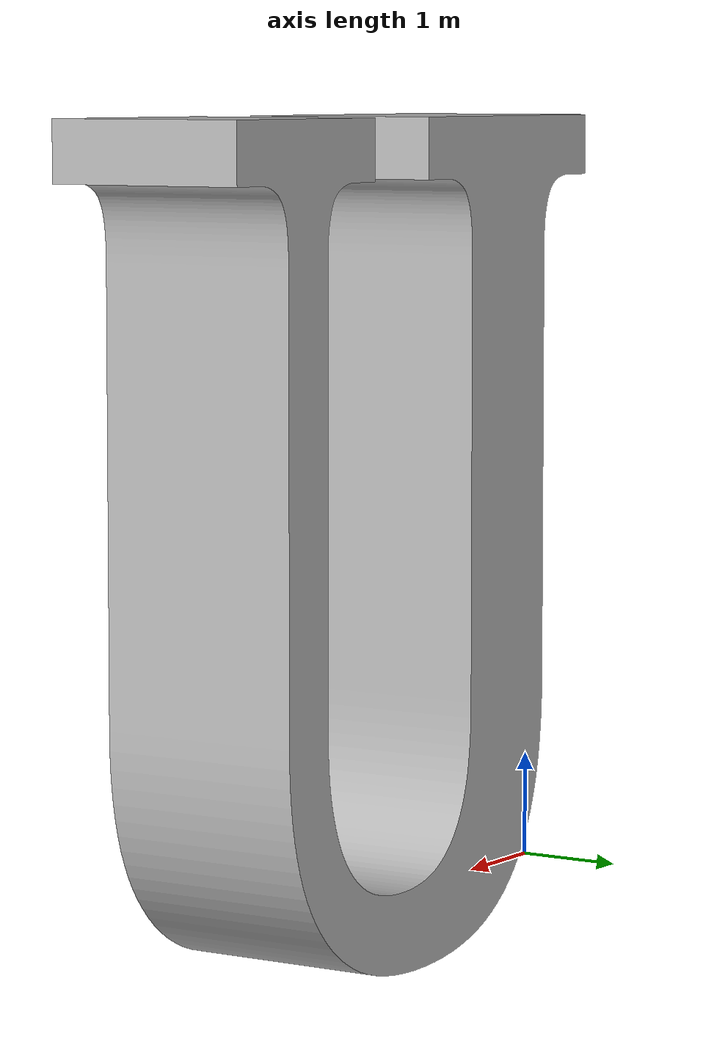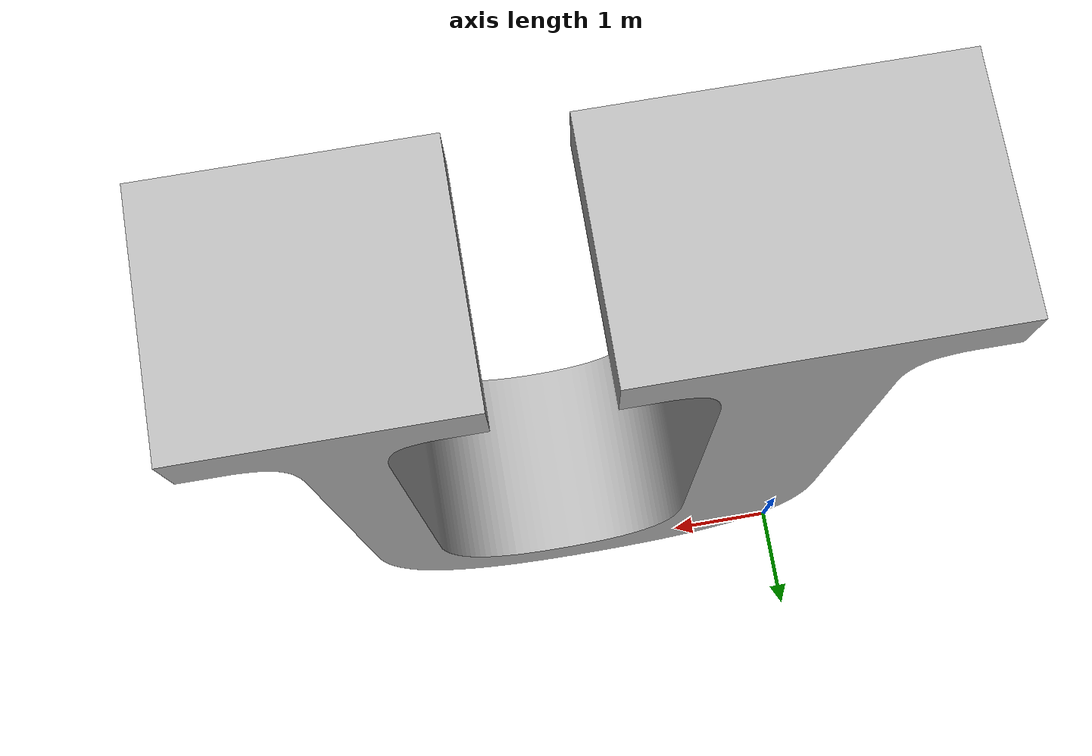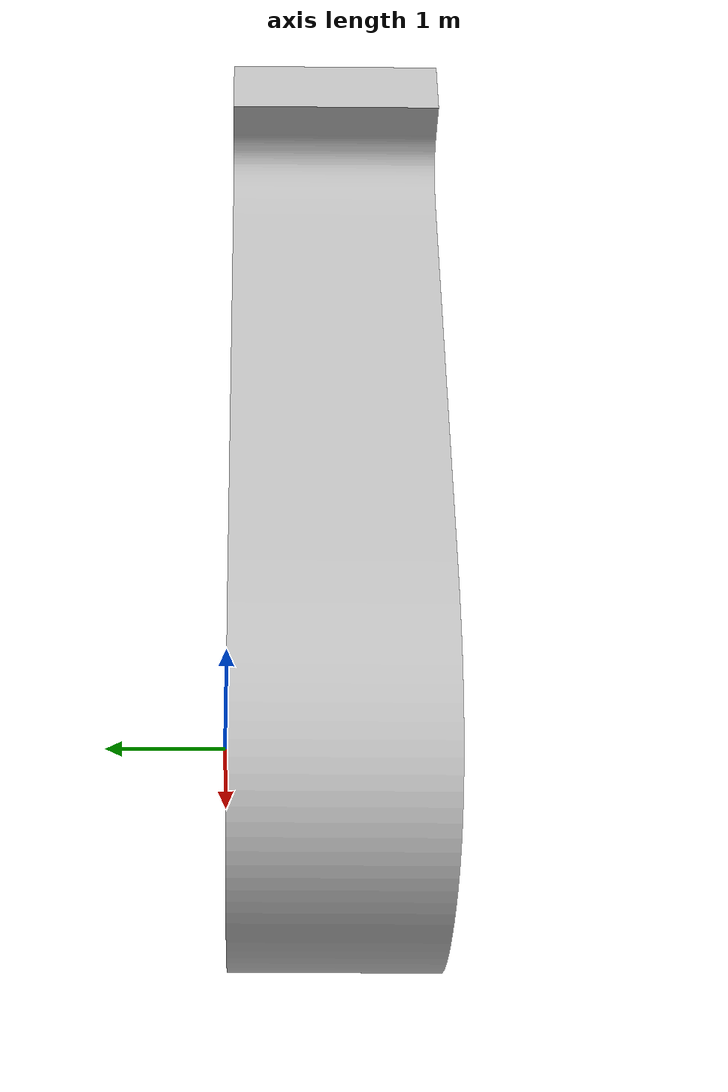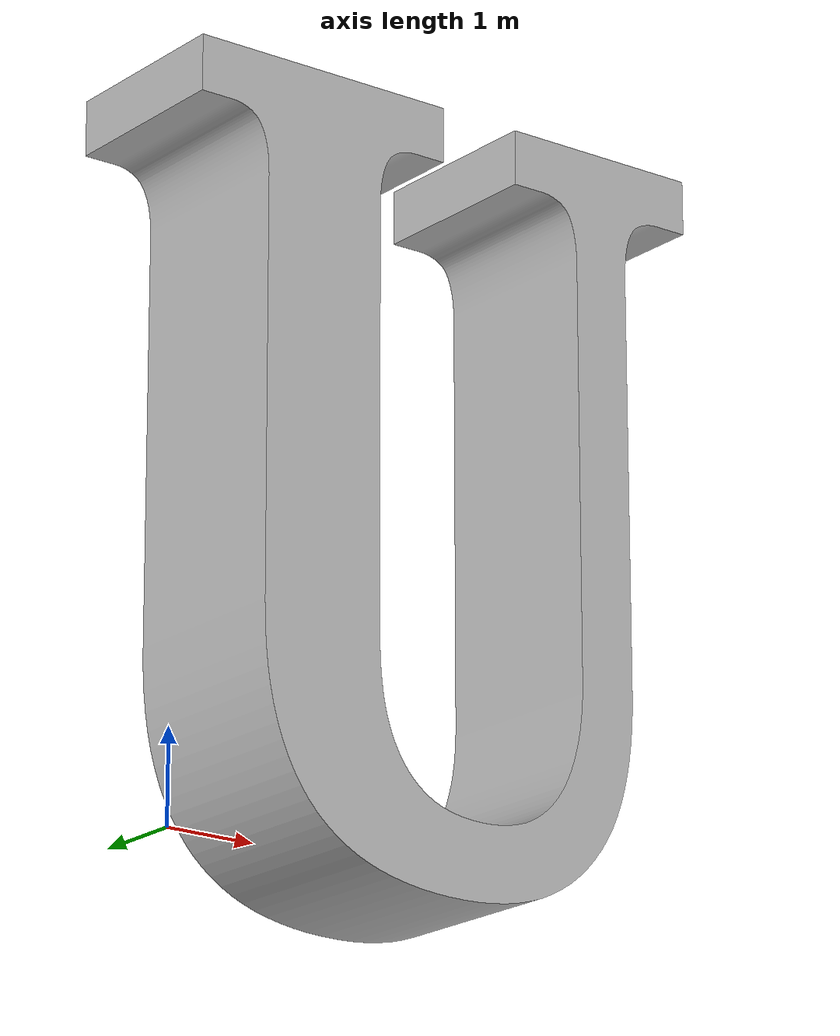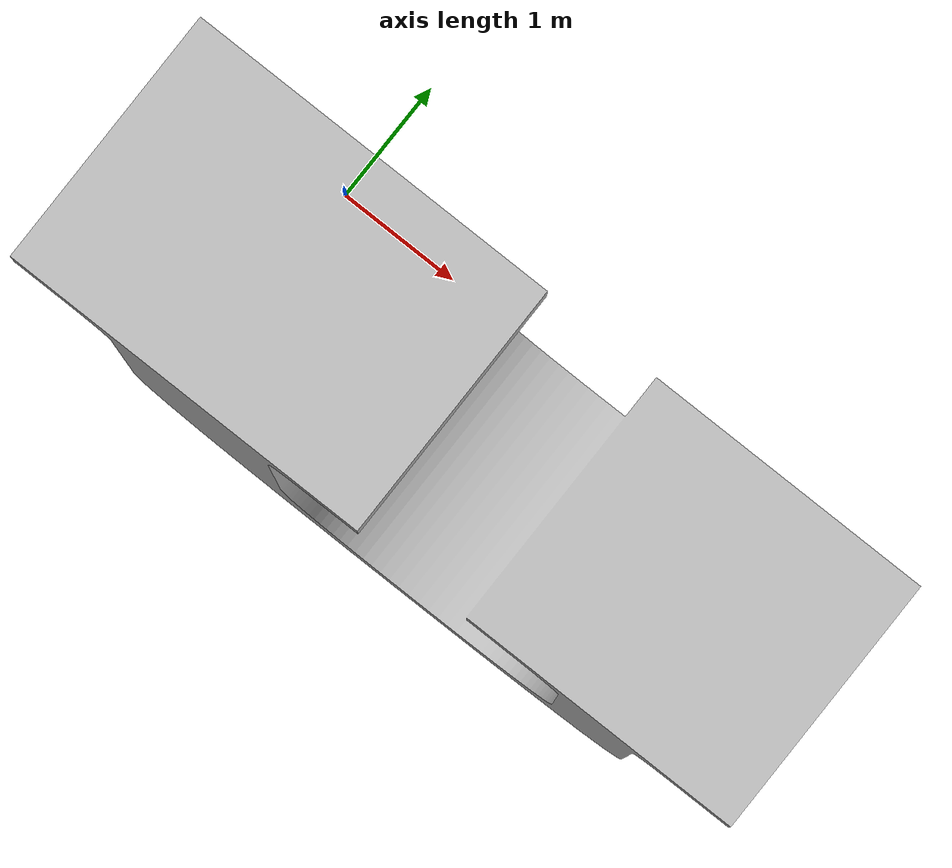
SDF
<sdf version='1.5'>
  <model name='text_U'>
    <link name='U'>
      <collision name='A_inertia_collision'>
        <pose frame=''>0 0 6.05 1.570796 -0 0</pose>
        <geometry>
          <mesh>
            <scale>0.2 0.2 0.2</scale>
            <uri>model://text_description/meshes/U.stl</uri>
          </mesh>
        </geometry>
        <surface>
          <contact>
            <ode>
              <min_depth>0.001</min_depth>
              <max_vel>0</max_vel>
            </ode>
          </contact>
          <friction>
            <ode/>
          </friction>
        </surface>
      </collision>
      <visual name='U_inertia_visual'>
        <pose frame=''>0 0 6.05 1.570796 -0 0</pose>
        <geometry>
          <mesh>
            <scale>0.2 0.2 0.2</scale>
            <uri>model://text_description/meshes/U.stl</uri>
          </mesh>
        </geometry>
      </visual>
      <kinematic>1</kinematic>
      <velocity_decay/>
    </link>
  </model>
</sdf>
